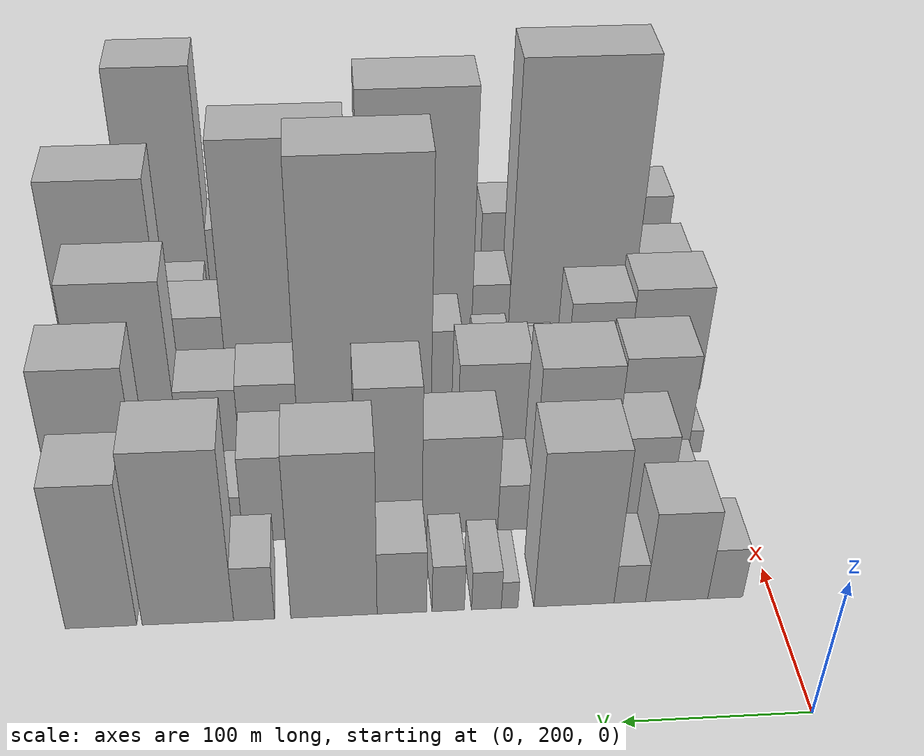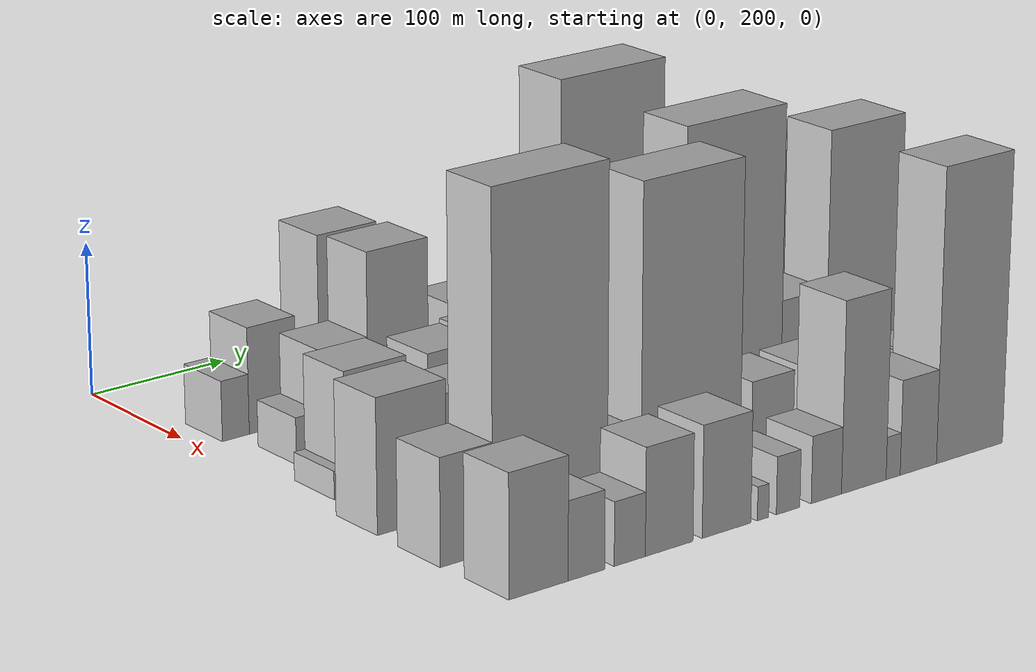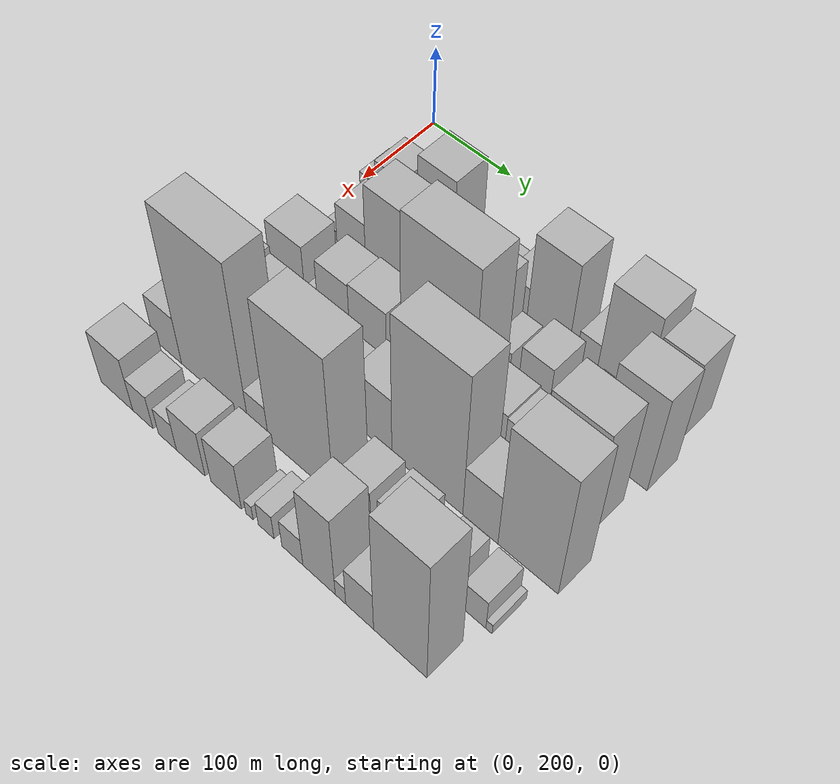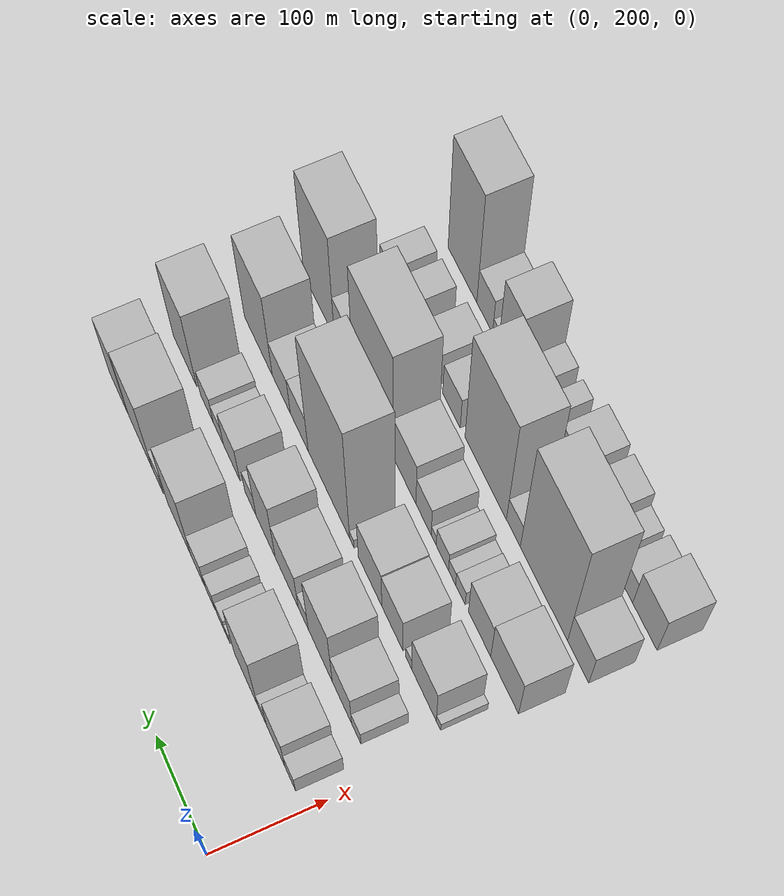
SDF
<sdf version="1.6">
 <world name="default">
  <model name="building_33">
   <static>1</static>
   <pose>100.0000 226.5743 0 0.000000 0.000000 0.000000</pose>
   <link name="link">
    <pose>0 0 19.50 0 0 0</pose>
    <collision name="collision"><geometry><box><size>40.0000 19.9543 39.0000</size></box></geometry></collision>
    <visual name="visual">
     <cast_shadows>0</cast_shadows>
     <geometry><box><size>40.0000 19.9543 39.0000</size></box></geometry>
     <material>
      <script>
       <uri>model://HANNAS_wall/materials/scripts</uri>
       <uri>model://HANNAS_wall/materials/textures</uri>
       <name>vrc/HANNAS_wall</name>
      </script>
     </material>
    </visual>
   </link>
  </model>
  <model name="building_34">
   <static>1</static>
   <pose>100.0000 254.2900 0 0.000000 0.000000 0.000000</pose>
   <link name="link">
    <pose>0 0 34.50 0 0 0</pose>
    <collision name="collision"><geometry><box><size>40.0000 35.4771 69.0000</size></box></geometry></collision>
    <visual name="visual">
     <cast_shadows>0</cast_shadows>
     <geometry><box><size>40.0000 35.4771 69.0000</size></box></geometry>
     <material>
      <script>
       <uri>model://HANNAS_wall/materials/scripts</uri>
       <uri>model://HANNAS_wall/materials/textures</uri>
       <name>vrc/HANNAS_wall</name>
      </script>
     </material>
    </visual>
   </link>
  </model>
  <model name="building_35">
   <static>1</static>
   <pose>100.0000 280.9951 0 0.000000 0.000000 0.000000</pose>
   <link name="link">
    <pose>0 0 15.00 0 0 0</pose>
    <collision name="collision"><geometry><box><size>40.0000 17.9330 30.0000</size></box></geometry></collision>
    <visual name="visual">
     <cast_shadows>0</cast_shadows>
     <geometry><box><size>40.0000 17.9330 30.0000</size></box></geometry>
     <material>
      <script>
       <uri>model://HANNAS_wall/materials/scripts</uri>
       <uri>model://HANNAS_wall/materials/textures</uri>
       <name>vrc/HANNAS_wall</name>
      </script>
     </material>
    </visual>
   </link>
  </model>
  <model name="building_36">
   <static>1</static>
   <pose>100.0000 312.5778 0 0.000000 0.000000 0.000000</pose>
   <link name="link">
    <pose>0 0 58.50 0 0 0</pose>
    <collision name="collision"><geometry><box><size>40.0000 45.2324 117.0000</size></box></geometry></collision>
    <visual name="visual">
     <cast_shadows>0</cast_shadows>
     <geometry><box><size>40.0000 45.2324 117.0000</size></box></geometry>
     <material>
      <script>
       <uri>model://HANNAS_wall/materials/scripts</uri>
       <uri>model://HANNAS_wall/materials/textures</uri>
       <name>vrc/HANNAS_wall</name>
      </script>
     </material>
    </visual>
   </link>
  </model>
  <model name="building_37">
   <static>1</static>
   <pose>100.0000 348.9004 0 0.000000 0.000000 0.000000</pose>
   <link name="link">
    <pose>0 0 10.50 0 0 0</pose>
    <collision name="collision"><geometry><box><size>40.0000 9.4128 21.0000</size></box></geometry></collision>
    <visual name="visual">
     <cast_shadows>0</cast_shadows>
     <geometry><box><size>40.0000 9.4128 21.0000</size></box></geometry>
     <material>
      <script>
       <uri>model://HANNAS_wall/materials/scripts</uri>
       <uri>model://HANNAS_wall/materials/textures</uri>
       <name>vrc/HANNAS_wall</name>
      </script>
     </material>
    </visual>
   </link>
  </model>
  <model name="building_38">
   <static>1</static>
   <pose>100.0000 361.9640 0 0.000000 0.000000 0.000000</pose>
   <link name="link">
    <pose>0 0 15.00 0 0 0</pose>
    <collision name="collision"><geometry><box><size>40.0000 16.7144 30.0000</size></box></geometry></collision>
    <visual name="visual">
     <cast_shadows>0</cast_shadows>
     <geometry><box><size>40.0000 16.7144 30.0000</size></box></geometry>
     <material>
      <script>
       <uri>model://HANNAS_wall/materials/scripts</uri>
       <uri>model://HANNAS_wall/materials/textures</uri>
       <name>vrc/HANNAS_wall</name>
      </script>
     </material>
    </visual>
   </link>
  </model>
  <model name="building_39">
   <static>1</static>
   <pose>100.0000 383.4142 0 0.000000 0.000000 0.000000</pose>
   <link name="link">
    <pose>0 0 18.00 0 0 0</pose>
    <collision name="collision"><geometry><box><size>40.0000 18.1861 36.0000</size></box></geometry></collision>
    <visual name="visual">
     <cast_shadows>0</cast_shadows>
     <geometry><box><size>40.0000 18.1861 36.0000</size></box></geometry>
     <material>
      <script>
       <uri>model://HANNAS_wall/materials/scripts</uri>
       <uri>model://HANNAS_wall/materials/textures</uri>
       <name>vrc/HANNAS_wall</name>
      </script>
     </material>
    </visual>
   </link>
  </model>
  <model name="building_40">
   <static>1</static>
   <pose>100.0000 409.3576 0 0.000000 0.000000 0.000000</pose>
   <link name="link">
    <pose>0 0 24.00 0 0 0</pose>
    <collision name="collision"><geometry><box><size>40.0000 27.7007 48.0000</size></box></geometry></collision>
    <visual name="visual">
     <cast_shadows>0</cast_shadows>
     <geometry><box><size>40.0000 27.7007 48.0000</size></box></geometry>
     <material>
      <script>
       <uri>model://HANNAS_wall/materials/scripts</uri>
       <uri>model://HANNAS_wall/materials/textures</uri>
       <name>vrc/HANNAS_wall</name>
      </script>
     </material>
    </visual>
   </link>
  </model>
  <model name="building_41">
   <static>1</static>
   <pose>100.0000 447.2292 0 0.000000 0.000000 0.000000</pose>
   <link name="link">
    <pose>0 0 61.50 0 0 0</pose>
    <collision name="collision"><geometry><box><size>40.0000 48.0426 123.0000</size></box></geometry></collision>
    <visual name="visual">
     <cast_shadows>0</cast_shadows>
     <geometry><box><size>40.0000 48.0426 123.0000</size></box></geometry>
     <material>
      <script>
       <uri>model://HANNAS_wall/materials/scripts</uri>
       <uri>model://HANNAS_wall/materials/textures</uri>
       <name>vrc/HANNAS_wall</name>
      </script>
     </material>
    </visual>
   </link>
  </model>
  <model name="building_42">
   <static>1</static>
   <pose>100.0000 491.5658 0 0.000000 0.000000 0.000000</pose>
   <link name="link">
    <pose>0 0 21.00 0 0 0</pose>
    <collision name="collision"><geometry><box><size>40.0000 22.6305 42.0000</size></box></geometry></collision>
    <visual name="visual">
     <cast_shadows>0</cast_shadows>
     <geometry><box><size>40.0000 22.6305 42.0000</size></box></geometry>
     <material>
      <script>
       <uri>model://HANNAS_wall/materials/scripts</uri>
       <uri>model://HANNAS_wall/materials/textures</uri>
       <name>vrc/HANNAS_wall</name>
      </script>
     </material>
    </visual>
   </link>
  </model>
  <model name="building_43">
   <static>1</static>
   <pose>100.0000 528.0806 0 0.000000 0.000000 0.000000</pose>
   <link name="link">
    <pose>0 0 64.50 0 0 0</pose>
    <collision name="collision"><geometry><box><size>40.0000 50.3991 129.0000</size></box></geometry></collision>
    <visual name="visual">
     <cast_shadows>0</cast_shadows>
     <geometry><box><size>40.0000 50.3991 129.0000</size></box></geometry>
     <material>
      <script>
       <uri>model://HANNAS_wall/materials/scripts</uri>
       <uri>model://HANNAS_wall/materials/textures</uri>
       <name>vrc/HANNAS_wall</name>
      </script>
     </material>
    </visual>
   </link>
  </model>
  <model name="building_44">
   <static>1</static>
   <pose>100.0000 575.9045 0 0.000000 0.000000 0.000000</pose>
   <link name="link">
    <pose>0 0 54.00 0 0 0</pose>
    <collision name="collision"><geometry><box><size>40.0000 39.2487 108.0000</size></box></geometry></collision>
    <visual name="visual">
     <cast_shadows>0</cast_shadows>
     <geometry><box><size>40.0000 39.2487 108.0000</size></box></geometry>
     <material>
      <script>
       <uri>model://HANNAS_wall/materials/scripts</uri>
       <uri>model://HANNAS_wall/materials/textures</uri>
       <name>vrc/HANNAS_wall</name>
      </script>
     </material>
    </visual>
   </link>
  </model>
  <model name="building_86">
   <static>1</static>
   <pose>160.0000 237.7883 0 0.000000 0.000000 0.000000</pose>
   <link name="link">
    <pose>0 0 15.00 0 0 0</pose>
    <collision name="collision"><geometry><box><size>40.0000 17.3962 30.0000</size></box></geometry></collision>
    <visual name="visual">
     <cast_shadows>0</cast_shadows>
     <geometry><box><size>40.0000 17.3962 30.0000</size></box></geometry>
     <material>
      <script>
       <uri>model://HANNAS_wall/materials/scripts</uri>
       <uri>model://HANNAS_wall/materials/textures</uri>
       <name>vrc/HANNAS_wall</name>
      </script>
     </material>
    </visual>
   </link>
  </model>
  <model name="building_87">
   <static>1</static>
   <pose>160.0000 264.7607 0 0.000000 0.000000 0.000000</pose>
   <link name="link">
    <pose>0 0 34.50 0 0 0</pose>
    <collision name="collision"><geometry><box><size>40.0000 36.5485 69.0000</size></box></geometry></collision>
    <visual name="visual">
     <cast_shadows>0</cast_shadows>
     <geometry><box><size>40.0000 36.5485 69.0000</size></box></geometry>
     <material>
      <script>
       <uri>model://HANNAS_wall/materials/scripts</uri>
       <uri>model://HANNAS_wall/materials/textures</uri>
       <name>vrc/HANNAS_wall</name>
      </script>
     </material>
    </visual>
   </link>
  </model>
  <model name="building_88">
   <static>1</static>
   <pose>160.0000 306.0437 0 0.000000 0.000000 0.000000</pose>
   <link name="link">
    <pose>0 0 61.50 0 0 0</pose>
    <collision name="collision"><geometry><box><size>40.0000 46.0176 123.0000</size></box></geometry></collision>
    <visual name="visual">
     <cast_shadows>0</cast_shadows>
     <geometry><box><size>40.0000 46.0176 123.0000</size></box></geometry>
     <material>
      <script>
       <uri>model://HANNAS_wall/materials/scripts</uri>
       <uri>model://HANNAS_wall/materials/textures</uri>
       <name>vrc/HANNAS_wall</name>
      </script>
     </material>
    </visual>
   </link>
  </model>
  <model name="building_89">
   <static>1</static>
   <pose>160.0000 338.9438 0 0.000000 0.000000 0.000000</pose>
   <link name="link">
    <pose>0 0 18.00 0 0 0</pose>
    <collision name="collision"><geometry><box><size>40.0000 19.7825 36.0000</size></box></geometry></collision>
    <visual name="visual">
     <cast_shadows>0</cast_shadows>
     <geometry><box><size>40.0000 19.7825 36.0000</size></box></geometry>
     <material>
      <script>
       <uri>model://HANNAS_wall/materials/scripts</uri>
       <uri>model://HANNAS_wall/materials/textures</uri>
       <name>vrc/HANNAS_wall</name>
      </script>
     </material>
    </visual>
   </link>
  </model>
  <model name="building_90">
   <static>1</static>
   <pose>160.0000 371.3312 0 0.000000 0.000000 0.000000</pose>
   <link name="link">
    <pose>0 0 37.50 0 0 0</pose>
    <collision name="collision"><geometry><box><size>40.0000 44.9923 75.0000</size></box></geometry></collision>
    <visual name="visual">
     <cast_shadows>0</cast_shadows>
     <geometry><box><size>40.0000 44.9923 75.0000</size></box></geometry>
     <material>
      <script>
       <uri>model://HANNAS_wall/materials/scripts</uri>
       <uri>model://HANNAS_wall/materials/textures</uri>
       <name>vrc/HANNAS_wall</name>
      </script>
     </material>
    </visual>
   </link>
  </model>
  <model name="building_91">
   <static>1</static>
   <pose>160.0000 413.0557 0 0.000000 0.000000 0.000000</pose>
   <link name="link">
    <pose>0 0 57.00 0 0 0</pose>
    <collision name="collision"><geometry><box><size>40.0000 38.4568 114.0000</size></box></geometry></collision>
    <visual name="visual">
     <cast_shadows>0</cast_shadows>
     <geometry><box><size>40.0000 38.4568 114.0000</size></box></geometry>
     <material>
      <script>
       <uri>model://HANNAS_wall/materials/scripts</uri>
       <uri>model://HANNAS_wall/materials/textures</uri>
       <name>vrc/HANNAS_wall</name>
      </script>
     </material>
    </visual>
   </link>
  </model>
  <model name="building_92">
   <static>1</static>
   <pose>160.0000 443.6695 0 0.000000 0.000000 0.000000</pose>
   <link name="link">
    <pose>0 0 22.50 0 0 0</pose>
    <collision name="collision"><geometry><box><size>40.0000 22.7707 45.0000</size></box></geometry></collision>
    <visual name="visual">
     <cast_shadows>0</cast_shadows>
     <geometry><box><size>40.0000 22.7707 45.0000</size></box></geometry>
     <material>
      <script>
       <uri>model://HANNAS_wall/materials/scripts</uri>
       <uri>model://HANNAS_wall/materials/textures</uri>
       <name>vrc/HANNAS_wall</name>
      </script>
     </material>
    </visual>
   </link>
  </model>
  <model name="building_93">
   <static>1</static>
   <pose>160.0000 482.1111 0 0.000000 0.000000 0.000000</pose>
   <link name="link">
    <pose>0 0 33.00 0 0 0</pose>
    <collision name="collision"><geometry><box><size>40.0000 34.1127 66.0000</size></box></geometry></collision>
    <visual name="visual">
     <cast_shadows>0</cast_shadows>
     <geometry><box><size>40.0000 34.1127 66.0000</size></box></geometry>
     <material>
      <script>
       <uri>model://HANNAS_wall/materials/scripts</uri>
       <uri>model://HANNAS_wall/materials/textures</uri>
       <name>vrc/HANNAS_wall</name>
      </script>
     </material>
    </visual>
   </link>
  </model>
  <model name="building_94">
   <static>1</static>
   <pose>160.0000 509.7058 0 0.000000 0.000000 0.000000</pose>
   <link name="link">
    <pose>0 0 18.00 0 0 0</pose>
    <collision name="collision"><geometry><box><size>40.0000 21.0765 36.0000</size></box></geometry></collision>
    <visual name="visual">
     <cast_shadows>0</cast_shadows>
     <geometry><box><size>40.0000 21.0765 36.0000</size></box></geometry>
     <material>
      <script>
       <uri>model://HANNAS_wall/materials/scripts</uri>
       <uri>model://HANNAS_wall/materials/textures</uri>
       <name>vrc/HANNAS_wall</name>
      </script>
     </material>
    </visual>
   </link>
  </model>
  <model name="building_95">
   <static>1</static>
   <pose>160.0000 533.6692 0 0.000000 0.000000 0.000000</pose>
   <link name="link">
    <pose>0 0 24.00 0 0 0</pose>
    <collision name="collision"><geometry><box><size>40.0000 26.8504 48.0000</size></box></geometry></collision>
    <visual name="visual">
     <cast_shadows>0</cast_shadows>
     <geometry><box><size>40.0000 26.8504 48.0000</size></box></geometry>
     <material>
      <script>
       <uri>model://HANNAS_wall/materials/scripts</uri>
       <uri>model://HANNAS_wall/materials/textures</uri>
       <name>vrc/HANNAS_wall</name>
      </script>
     </material>
    </visual>
   </link>
  </model>
  <model name="building_96">
   <static>1</static>
   <pose>160.0000 580.1037 0 0.000000 0.000000 0.000000</pose>
   <link name="link">
    <pose>0 0 67.50 0 0 0</pose>
    <collision name="collision"><geometry><box><size>40.0000 50.0185 135.0000</size></box></geometry></collision>
    <visual name="visual">
     <cast_shadows>0</cast_shadows>
     <geometry><box><size>40.0000 50.0185 135.0000</size></box></geometry>
     <material>
      <script>
       <uri>model://HANNAS_wall/materials/scripts</uri>
       <uri>model://HANNAS_wall/materials/textures</uri>
       <name>vrc/HANNAS_wall</name>
      </script>
     </material>
    </visual>
   </link>
  </model>
  <model name="building_143">
   <static>1</static>
   <pose>220.0000 217.3209 0 0.000000 0.000000 0.000000</pose>
   <link name="link">
    <pose>0 0 9.00 0 0 0</pose>
    <collision name="collision"><geometry><box><size>40.0000 7.9810 18.0000</size></box></geometry></collision>
    <visual name="visual">
     <cast_shadows>0</cast_shadows>
     <geometry><box><size>40.0000 7.9810 18.0000</size></box></geometry>
     <material>
      <script>
       <uri>model://HANNAS_wall/materials/scripts</uri>
       <uri>model://HANNAS_wall/materials/textures</uri>
       <name>vrc/HANNAS_wall</name>
      </script>
     </material>
    </visual>
   </link>
  </model>
  <model name="building_144">
   <static>1</static>
   <pose>220.0000 244.0377 0 0.000000 0.000000 0.000000</pose>
   <link name="link">
    <pose>0 0 39.00 0 0 0</pose>
    <collision name="collision"><geometry><box><size>40.0000 45.4525 78.0000</size></box></geometry></collision>
    <visual name="visual">
     <cast_shadows>0</cast_shadows>
     <geometry><box><size>40.0000 45.4525 78.0000</size></box></geometry>
     <material>
      <script>
       <uri>model://HANNAS_wall/materials/scripts</uri>
       <uri>model://HANNAS_wall/materials/textures</uri>
       <name>vrc/HANNAS_wall</name>
      </script>
     </material>
    </visual>
   </link>
  </model>
  <model name="building_145">
   <static>1</static>
   <pose>220.0000 272.2657 0 0.000000 0.000000 0.000000</pose>
   <link name="link">
    <pose>0 0 12.00 0 0 0</pose>
    <collision name="collision"><geometry><box><size>40.0000 11.0036 24.0000</size></box></geometry></collision>
    <visual name="visual">
     <cast_shadows>0</cast_shadows>
     <geometry><box><size>40.0000 11.0036 24.0000</size></box></geometry>
     <material>
      <script>
       <uri>model://HANNAS_wall/materials/scripts</uri>
       <uri>model://HANNAS_wall/materials/textures</uri>
       <name>vrc/HANNAS_wall</name>
      </script>
     </material>
    </visual>
   </link>
  </model>
  <model name="building_146">
   <static>1</static>
   <pose>220.0000 302.6118 0 0.000000 0.000000 0.000000</pose>
   <link name="link">
    <pose>0 0 37.50 0 0 0</pose>
    <collision name="collision"><geometry><box><size>40.0000 39.6886 75.0000</size></box></geometry></collision>
    <visual name="visual">
     <cast_shadows>0</cast_shadows>
     <geometry><box><size>40.0000 39.6886 75.0000</size></box></geometry>
     <material>
      <script>
       <uri>model://HANNAS_wall/materials/scripts</uri>
       <uri>model://HANNAS_wall/materials/textures</uri>
       <name>vrc/HANNAS_wall</name>
      </script>
     </material>
    </visual>
   </link>
  </model>
  <model name="building_147">
   <static>1</static>
   <pose>220.0000 344.9691 0 0.000000 0.000000 0.000000</pose>
   <link name="link">
    <pose>0 0 39.00 0 0 0</pose>
    <collision name="collision"><geometry><box><size>40.0000 45.0260 78.0000</size></box></geometry></collision>
    <visual name="visual">
     <cast_shadows>0</cast_shadows>
     <geometry><box><size>40.0000 45.0260 78.0000</size></box></geometry>
     <material>
      <script>
       <uri>model://HANNAS_wall/materials/scripts</uri>
       <uri>model://HANNAS_wall/materials/textures</uri>
       <name>vrc/HANNAS_wall</name>
      </script>
     </material>
    </visual>
   </link>
  </model>
  <model name="building_148">
   <static>1</static>
   <pose>220.0000 379.9000 0 0.000000 0.000000 0.000000</pose>
   <link name="link">
    <pose>0 0 9.00 0 0 0</pose>
    <collision name="collision"><geometry><box><size>40.0000 8.8358 18.0000</size></box></geometry></collision>
    <visual name="visual">
     <cast_shadows>0</cast_shadows>
     <geometry><box><size>40.0000 8.8358 18.0000</size></box></geometry>
     <material>
      <script>
       <uri>model://HANNAS_wall/materials/scripts</uri>
       <uri>model://HANNAS_wall/materials/textures</uri>
       <name>vrc/HANNAS_wall</name>
      </script>
     </material>
    </visual>
   </link>
  </model>
  <model name="building_149">
   <static>1</static>
   <pose>220.0000 424.9919 0 0.000000 0.000000 0.000000</pose>
   <link name="link">
    <pose>0 0 112.50 0 0 0</pose>
    <collision name="collision"><geometry><box><size>40.0000 81.3480 225.0000</size></box></geometry></collision>
    <visual name="visual">
     <cast_shadows>0</cast_shadows>
     <geometry><box><size>40.0000 81.3480 225.0000</size></box></geometry>
     <material>
      <script>
       <uri>model://HANNAS_wall/materials/scripts</uri>
       <uri>model://HANNAS_wall/materials/textures</uri>
       <name>vrc/HANNAS_wall</name>
      </script>
     </material>
    </visual>
   </link>
  </model>
  <model name="building_150">
   <static>1</static>
   <pose>220.0000 483.7124 0 0.000000 0.000000 0.000000</pose>
   <link name="link">
    <pose>0 0 34.50 0 0 0</pose>
    <collision name="collision"><geometry><box><size>40.0000 36.0931 69.0000</size></box></geometry></collision>
    <visual name="visual">
     <cast_shadows>0</cast_shadows>
     <geometry><box><size>40.0000 36.0931 69.0000</size></box></geometry>
     <material>
      <script>
       <uri>model://HANNAS_wall/materials/scripts</uri>
       <uri>model://HANNAS_wall/materials/textures</uri>
       <name>vrc/HANNAS_wall</name>
      </script>
     </material>
    </visual>
   </link>
  </model>
  <model name="building_151">
   <static>1</static>
   <pose>220.0000 520.1125 0 0.000000 0.000000 0.000000</pose>
   <link name="link">
    <pose>0 0 33.00 0 0 0</pose>
    <collision name="collision"><geometry><box><size>40.0000 36.7072 66.0000</size></box></geometry></collision>
    <visual name="visual">
     <cast_shadows>0</cast_shadows>
     <geometry><box><size>40.0000 36.7072 66.0000</size></box></geometry>
     <material>
      <script>
       <uri>model://HANNAS_wall/materials/scripts</uri>
       <uri>model://HANNAS_wall/materials/textures</uri>
       <name>vrc/HANNAS_wall</name>
      </script>
     </material>
    </visual>
   </link>
  </model>
  <model name="building_152">
   <static>1</static>
   <pose>220.0000 567.4619 0 0.000000 0.000000 0.000000</pose>
   <link name="link">
    <pose>0 0 73.50 0 0 0</pose>
    <collision name="collision"><geometry><box><size>40.0000 57.9916 147.0000</size></box></geometry></collision>
    <visual name="visual">
     <cast_shadows>0</cast_shadows>
     <geometry><box><size>40.0000 57.9916 147.0000</size></box></geometry>
     <material>
      <script>
       <uri>model://HANNAS_wall/materials/scripts</uri>
       <uri>model://HANNAS_wall/materials/textures</uri>
       <name>vrc/HANNAS_wall</name>
      </script>
     </material>
    </visual>
   </link>
  </model>
  <model name="building_193">
   <static>1</static>
   <pose>280.0000 225.0133 0 0.000000 0.000000 0.000000</pose>
   <link name="link">
    <pose>0 0 42.00 0 0 0</pose>
    <collision name="collision"><geometry><box><size>40.0000 49.9312 84.0000</size></box></geometry></collision>
    <visual name="visual">
     <cast_shadows>0</cast_shadows>
     <geometry><box><size>40.0000 49.9312 84.0000</size></box></geometry>
     <material>
      <script>
       <uri>model://HANNAS_wall/materials/scripts</uri>
       <uri>model://HANNAS_wall/materials/textures</uri>
       <name>vrc/HANNAS_wall</name>
      </script>
     </material>
    </visual>
   </link>
  </model>
  <model name="building_194">
   <static>1</static>
   <pose>280.0000 270.2196 0 0.000000 0.000000 0.000000</pose>
   <link name="link">
    <pose>0 0 37.50 0 0 0</pose>
    <collision name="collision"><geometry><box><size>40.0000 40.4814 75.0000</size></box></geometry></collision>
    <visual name="visual">
     <cast_shadows>0</cast_shadows>
     <geometry><box><size>40.0000 40.4814 75.0000</size></box></geometry>
     <material>
      <script>
       <uri>model://HANNAS_wall/materials/scripts</uri>
       <uri>model://HANNAS_wall/materials/textures</uri>
       <name>vrc/HANNAS_wall</name>
      </script>
     </material>
    </visual>
   </link>
  </model>
  <model name="building_195">
   <static>1</static>
   <pose>280.0000 305.2722 0 0.000000 0.000000 0.000000</pose>
   <link name="link">
    <pose>0 0 15.00 0 0 0</pose>
    <collision name="collision"><geometry><box><size>40.0000 17.6238 30.0000</size></box></geometry></collision>
    <visual name="visual">
     <cast_shadows>0</cast_shadows>
     <geometry><box><size>40.0000 17.6238 30.0000</size></box></geometry>
     <material>
      <script>
       <uri>model://HANNAS_wall/materials/scripts</uri>
       <uri>model://HANNAS_wall/materials/textures</uri>
       <name>vrc/HANNAS_wall</name>
      </script>
     </material>
    </visual>
   </link>
  </model>
  <model name="building_196">
   <static>1</static>
   <pose>280.0000 320.6730 0 0.000000 0.000000 0.000000</pose>
   <link name="link">
    <pose>0 0 13.50 0 0 0</pose>
    <collision name="collision"><geometry><box><size>40.0000 13.1778 27.0000</size></box></geometry></collision>
    <visual name="visual">
     <cast_shadows>0</cast_shadows>
     <geometry><box><size>40.0000 13.1778 27.0000</size></box></geometry>
     <material>
      <script>
       <uri>model://HANNAS_wall/materials/scripts</uri>
       <uri>model://HANNAS_wall/materials/textures</uri>
       <name>vrc/HANNAS_wall</name>
      </script>
     </material>
    </visual>
   </link>
  </model>
  <model name="building_197">
   <static>1</static>
   <pose>280.0000 338.7506 0 0.000000 0.000000 0.000000</pose>
   <link name="link">
    <pose>0 0 19.50 0 0 0</pose>
    <collision name="collision"><geometry><box><size>40.0000 22.9774 39.0000</size></box></geometry></collision>
    <visual name="visual">
     <cast_shadows>0</cast_shadows>
     <geometry><box><size>40.0000 22.9774 39.0000</size></box></geometry>
     <material>
      <script>
       <uri>model://HANNAS_wall/materials/scripts</uri>
       <uri>model://HANNAS_wall/materials/textures</uri>
       <name>vrc/HANNAS_wall</name>
      </script>
     </material>
    </visual>
   </link>
  </model>
  <model name="building_198">
   <static>1</static>
   <pose>280.0000 354.9611 0 0.000000 0.000000 0.000000</pose>
   <link name="link">
    <pose>0 0 10.50 0 0 0</pose>
    <collision name="collision"><geometry><box><size>40.0000 9.4434 21.0000</size></box></geometry></collision>
    <visual name="visual">
     <cast_shadows>0</cast_shadows>
     <geometry><box><size>40.0000 9.4434 21.0000</size></box></geometry>
     <material>
      <script>
       <uri>model://HANNAS_wall/materials/scripts</uri>
       <uri>model://HANNAS_wall/materials/textures</uri>
       <name>vrc/HANNAS_wall</name>
      </script>
     </material>
    </visual>
   </link>
  </model>
  <model name="building_199">
   <static>1</static>
   <pose>280.0000 374.0557 0 0.000000 0.000000 0.000000</pose>
   <link name="link">
    <pose>0 0 28.50 0 0 0</pose>
    <collision name="collision"><geometry><box><size>40.0000 28.7459 57.0000</size></box></geometry></collision>
    <visual name="visual">
     <cast_shadows>0</cast_shadows>
     <geometry><box><size>40.0000 28.7459 57.0000</size></box></geometry>
     <material>
      <script>
       <uri>model://HANNAS_wall/materials/scripts</uri>
       <uri>model://HANNAS_wall/materials/textures</uri>
       <name>vrc/HANNAS_wall</name>
      </script>
     </material>
    </visual>
   </link>
  </model>
  <model name="building_200">
   <static>1</static>
   <pose>280.0000 410.1168 0 0.000000 0.000000 0.000000</pose>
   <link name="link">
    <pose>0 0 42.00 0 0 0</pose>
    <collision name="collision"><geometry><box><size>40.0000 43.3763 84.0000</size></box></geometry></collision>
    <visual name="visual">
     <cast_shadows>0</cast_shadows>
     <geometry><box><size>40.0000 43.3763 84.0000</size></box></geometry>
     <material>
      <script>
       <uri>model://HANNAS_wall/materials/scripts</uri>
       <uri>model://HANNAS_wall/materials/textures</uri>
       <name>vrc/HANNAS_wall</name>
      </script>
     </material>
    </visual>
   </link>
  </model>
  <model name="building_201">
   <static>1</static>
   <pose>280.0000 471.5081 0 0.000000 0.000000 0.000000</pose>
   <link name="link">
    <pose>0 0 100.50 0 0 0</pose>
    <collision name="collision"><geometry><box><size>40.0000 79.4062 201.0000</size></box></geometry></collision>
    <visual name="visual">
     <cast_shadows>0</cast_shadows>
     <geometry><box><size>40.0000 79.4062 201.0000</size></box></geometry>
     <material>
      <script>
       <uri>model://HANNAS_wall/materials/scripts</uri>
       <uri>model://HANNAS_wall/materials/textures</uri>
       <name>vrc/HANNAS_wall</name>
      </script>
     </material>
    </visual>
   </link>
  </model>
  <model name="building_202">
   <static>1</static>
   <pose>280.0000 530.1038 0 0.000000 0.000000 0.000000</pose>
   <link name="link">
    <pose>0 0 37.50 0 0 0</pose>
    <collision name="collision"><geometry><box><size>40.0000 37.7852 75.0000</size></box></geometry></collision>
    <visual name="visual">
     <cast_shadows>0</cast_shadows>
     <geometry><box><size>40.0000 37.7852 75.0000</size></box></geometry>
     <material>
      <script>
       <uri>model://HANNAS_wall/materials/scripts</uri>
       <uri>model://HANNAS_wall/materials/textures</uri>
       <name>vrc/HANNAS_wall</name>
      </script>
     </material>
    </visual>
   </link>
  </model>
  <model name="building_203">
   <static>1</static>
   <pose>280.0000 580.2950 0 0.000000 0.000000 0.000000</pose>
   <link name="link">
    <pose>0 0 88.50 0 0 0</pose>
    <collision name="collision"><geometry><box><size>40.0000 62.5972 177.0000</size></box></geometry></collision>
    <visual name="visual">
     <cast_shadows>0</cast_shadows>
     <geometry><box><size>40.0000 62.5972 177.0000</size></box></geometry>
     <material>
      <script>
       <uri>model://HANNAS_wall/materials/scripts</uri>
       <uri>model://HANNAS_wall/materials/textures</uri>
       <name>vrc/HANNAS_wall</name>
      </script>
     </material>
    </visual>
   </link>
  </model>
  <model name="building_254">
   <static>1</static>
   <pose>340.0000 217.9409 0 0.000000 0.000000 0.000000</pose>
   <link name="link">
    <pose>0 0 33.00 0 0 0</pose>
    <collision name="collision"><geometry><box><size>40.0000 37.1772 66.0000</size></box></geometry></collision>
    <visual name="visual">
     <cast_shadows>0</cast_shadows>
     <geometry><box><size>40.0000 37.1772 66.0000</size></box></geometry>
     <material>
      <script>
       <uri>model://HANNAS_wall/materials/scripts</uri>
       <uri>model://HANNAS_wall/materials/textures</uri>
       <name>vrc/HANNAS_wall</name>
      </script>
     </material>
    </visual>
   </link>
  </model>
  <model name="building_255">
   <static>1</static>
   <pose>340.0000 278.9025 0 0.000000 0.000000 0.000000</pose>
   <link name="link">
    <pose>0 0 108.00 0 0 0</pose>
    <collision name="collision"><geometry><box><size>40.0000 84.7460 216.0000</size></box></geometry></collision>
    <visual name="visual">
     <cast_shadows>0</cast_shadows>
     <geometry><box><size>40.0000 84.7460 216.0000</size></box></geometry>
     <material>
      <script>
       <uri>model://HANNAS_wall/materials/scripts</uri>
       <uri>model://HANNAS_wall/materials/textures</uri>
       <name>vrc/HANNAS_wall</name>
      </script>
     </material>
    </visual>
   </link>
  </model>
  <model name="building_256">
   <static>1</static>
   <pose>340.0000 333.9709 0 0.000000 0.000000 0.000000</pose>
   <link name="link">
    <pose>0 0 24.00 0 0 0</pose>
    <collision name="collision"><geometry><box><size>40.0000 25.3909 48.0000</size></box></geometry></collision>
    <visual name="visual">
     <cast_shadows>0</cast_shadows>
     <geometry><box><size>40.0000 25.3909 48.0000</size></box></geometry>
     <material>
      <script>
       <uri>model://HANNAS_wall/materials/scripts</uri>
       <uri>model://HANNAS_wall/materials/textures</uri>
       <name>vrc/HANNAS_wall</name>
      </script>
     </material>
    </visual>
   </link>
  </model>
  <model name="building_257">
   <static>1</static>
   <pose>340.0000 385.3400 0 0.000000 0.000000 0.000000</pose>
   <link name="link">
    <pose>0 0 99.00 0 0 0</pose>
    <collision name="collision"><geometry><box><size>40.0000 77.3474 198.0000</size></box></geometry></collision>
    <visual name="visual">
     <cast_shadows>0</cast_shadows>
     <geometry><box><size>40.0000 77.3474 198.0000</size></box></geometry>
     <material>
      <script>
       <uri>model://HANNAS_wall/materials/scripts</uri>
       <uri>model://HANNAS_wall/materials/textures</uri>
       <name>vrc/HANNAS_wall</name>
      </script>
     </material>
    </visual>
   </link>
  </model>
  <model name="building_258">
   <static>1</static>
   <pose>340.0000 449.7988 0 0.000000 0.000000 0.000000</pose>
   <link name="link">
    <pose>0 0 28.50 0 0 0</pose>
    <collision name="collision"><geometry><box><size>40.0000 33.5702 57.0000</size></box></geometry></collision>
    <visual name="visual">
     <cast_shadows>0</cast_shadows>
     <geometry><box><size>40.0000 33.5702 57.0000</size></box></geometry>
     <material>
      <script>
       <uri>model://HANNAS_wall/materials/scripts</uri>
       <uri>model://HANNAS_wall/materials/textures</uri>
       <name>vrc/HANNAS_wall</name>
      </script>
     </material>
    </visual>
   </link>
  </model>
  <model name="building_259">
   <static>1</static>
   <pose>340.0000 491.5756 0 0.000000 0.000000 0.000000</pose>
   <link name="link">
    <pose>0 0 28.50 0 0 0</pose>
    <collision name="collision"><geometry><box><size>40.0000 33.9834 57.0000</size></box></geometry></collision>
    <visual name="visual">
     <cast_shadows>0</cast_shadows>
     <geometry><box><size>40.0000 33.9834 57.0000</size></box></geometry>
     <material>
      <script>
       <uri>model://HANNAS_wall/materials/scripts</uri>
       <uri>model://HANNAS_wall/materials/textures</uri>
       <name>vrc/HANNAS_wall</name>
      </script>
     </material>
    </visual>
   </link>
  </model>
  <model name="building_260">
   <static>1</static>
   <pose>340.0000 513.4118 0 0.000000 0.000000 0.000000</pose>
   <link name="link">
    <pose>0 0 10.50 0 0 0</pose>
    <collision name="collision"><geometry><box><size>40.0000 9.6889 21.0000</size></box></geometry></collision>
    <visual name="visual">
     <cast_shadows>0</cast_shadows>
     <geometry><box><size>40.0000 9.6889 21.0000</size></box></geometry>
     <material>
      <script>
       <uri>model://HANNAS_wall/materials/scripts</uri>
       <uri>model://HANNAS_wall/materials/textures</uri>
       <name>vrc/HANNAS_wall</name>
      </script>
     </material>
    </visual>
   </link>
  </model>
  <model name="building_261">
   <static>1</static>
   <pose>340.0000 542.0038 0 0.000000 0.000000 0.000000</pose>
   <link name="link">
    <pose>0 0 24.00 0 0 0</pose>
    <collision name="collision"><geometry><box><size>40.0000 27.4951 48.0000</size></box></geometry></collision>
    <visual name="visual">
     <cast_shadows>0</cast_shadows>
     <geometry><box><size>40.0000 27.4951 48.0000</size></box></geometry>
     <material>
      <script>
       <uri>model://HANNAS_wall/materials/scripts</uri>
       <uri>model://HANNAS_wall/materials/textures</uri>
       <name>vrc/HANNAS_wall</name>
      </script>
     </material>
    </visual>
   </link>
  </model>
  <model name="building_262">
   <static>1</static>
   <pose>340.0000 577.3131 0 0.000000 0.000000 0.000000</pose>
   <link name="link">
    <pose>0 0 22.50 0 0 0</pose>
    <collision name="collision"><geometry><box><size>40.0000 25.1236 45.0000</size></box></geometry></collision>
    <visual name="visual">
     <cast_shadows>0</cast_shadows>
     <geometry><box><size>40.0000 25.1236 45.0000</size></box></geometry>
     <material>
      <script>
       <uri>model://HANNAS_wall/materials/scripts</uri>
       <uri>model://HANNAS_wall/materials/textures</uri>
       <name>vrc/HANNAS_wall</name>
      </script>
     </material>
    </visual>
   </link>
  </model>
  <model name="building_263">
   <static>1</static>
   <pose>340.0000 593.0935 0 0.000000 0.000000 0.000000</pose>
   <link name="link">
    <pose>0 0 7.50 0 0 0</pose>
    <collision name="collision"><geometry><box><size>40.0000 6.4374 15.0000</size></box></geometry></collision>
    <visual name="visual">
     <cast_shadows>0</cast_shadows>
     <geometry><box><size>40.0000 6.4374 15.0000</size></box></geometry>
     <material>
      <script>
       <uri>model://HANNAS_wall/materials/scripts</uri>
       <uri>model://HANNAS_wall/materials/textures</uri>
       <name>vrc/HANNAS_wall</name>
      </script>
     </material>
    </visual>
   </link>
  </model>
  <model name="building_308">
   <static>1</static>
   <pose>400.0000 221.7041 0 0.000000 0.000000 0.000000</pose>
   <link name="link">
    <pose>0 0 37.50 0 0 0</pose>
    <collision name="collision"><geometry><box><size>40.0000 42.1356 75.0000</size></box></geometry></collision>
    <visual name="visual">
     <cast_shadows>0</cast_shadows>
     <geometry><box><size>40.0000 42.1356 75.0000</size></box></geometry>
     <material>
      <script>
       <uri>model://HANNAS_wall/materials/scripts</uri>
       <uri>model://HANNAS_wall/materials/textures</uri>
       <name>vrc/HANNAS_wall</name>
      </script>
     </material>
    </visual>
   </link>
  </model>
  <model name="building_309">
   <static>1</static>
   <pose>400.0000 255.9290 0 0.000000 0.000000 0.000000</pose>
   <link name="link">
    <pose>0 0 24.00 0 0 0</pose>
    <collision name="collision"><geometry><box><size>40.0000 26.3141 48.0000</size></box></geometry></collision>
    <visual name="visual">
     <cast_shadows>0</cast_shadows>
     <geometry><box><size>40.0000 26.3141 48.0000</size></box></geometry>
     <material>
      <script>
       <uri>model://HANNAS_wall/materials/scripts</uri>
       <uri>model://HANNAS_wall/materials/textures</uri>
       <name>vrc/HANNAS_wall</name>
      </script>
     </material>
    </visual>
   </link>
  </model>
  <model name="building_310">
   <static>1</static>
   <pose>400.0000 287.5529 0 0.000000 0.000000 0.000000</pose>
   <link name="link">
    <pose>0 0 19.50 0 0 0</pose>
    <collision name="collision"><geometry><box><size>40.0000 22.9336 39.0000</size></box></geometry></collision>
    <visual name="visual">
     <cast_shadows>0</cast_shadows>
     <geometry><box><size>40.0000 22.9336 39.0000</size></box></geometry>
     <material>
      <script>
       <uri>model://HANNAS_wall/materials/scripts</uri>
       <uri>model://HANNAS_wall/materials/textures</uri>
       <name>vrc/HANNAS_wall</name>
      </script>
     </material>
    </visual>
   </link>
  </model>
  <model name="building_311">
   <static>1</static>
   <pose>400.0000 316.8373 0 0.000000 0.000000 0.000000</pose>
   <link name="link">
    <pose>0 0 33.00 0 0 0</pose>
    <collision name="collision"><geometry><box><size>40.0000 35.6354 66.0000</size></box></geometry></collision>
    <visual name="visual">
     <cast_shadows>0</cast_shadows>
     <geometry><box><size>40.0000 35.6354 66.0000</size></box></geometry>
     <material>
      <script>
       <uri>model://HANNAS_wall/materials/scripts</uri>
       <uri>model://HANNAS_wall/materials/textures</uri>
       <name>vrc/HANNAS_wall</name>
      </script>
     </material>
    </visual>
   </link>
  </model>
  <model name="building_312">
   <static>1</static>
   <pose>400.0000 360.2936 0 0.000000 0.000000 0.000000</pose>
   <link name="link">
    <pose>0 0 34.50 0 0 0</pose>
    <collision name="collision"><geometry><box><size>40.0000 37.2771 69.0000</size></box></geometry></collision>
    <visual name="visual">
     <cast_shadows>0</cast_shadows>
     <geometry><box><size>40.0000 37.2771 69.0000</size></box></geometry>
     <material>
      <script>
       <uri>model://HANNAS_wall/materials/scripts</uri>
       <uri>model://HANNAS_wall/materials/textures</uri>
       <name>vrc/HANNAS_wall</name>
      </script>
     </material>
    </visual>
   </link>
  </model>
  <model name="building_313">
   <static>1</static>
   <pose>400.0000 388.3353 0 0.000000 0.000000 0.000000</pose>
   <link name="link">
    <pose>0 0 10.50 0 0 0</pose>
    <collision name="collision"><geometry><box><size>40.0000 8.8062 21.0000</size></box></geometry></collision>
    <visual name="visual">
     <cast_shadows>0</cast_shadows>
     <geometry><box><size>40.0000 8.8062 21.0000</size></box></geometry>
     <material>
      <script>
       <uri>model://HANNAS_wall/materials/scripts</uri>
       <uri>model://HANNAS_wall/materials/textures</uri>
       <name>vrc/HANNAS_wall</name>
      </script>
     </material>
    </visual>
   </link>
  </model>
  <model name="building_314">
   <static>1</static>
   <pose>400.0000 407.9941 0 0.000000 0.000000 0.000000</pose>
   <link name="link">
    <pose>0 0 18.00 0 0 0</pose>
    <collision name="collision"><geometry><box><size>40.0000 18.5114 36.0000</size></box></geometry></collision>
    <visual name="visual">
     <cast_shadows>0</cast_shadows>
     <geometry><box><size>40.0000 18.5114 36.0000</size></box></geometry>
     <material>
      <script>
       <uri>model://HANNAS_wall/materials/scripts</uri>
       <uri>model://HANNAS_wall/materials/textures</uri>
       <name>vrc/HANNAS_wall</name>
      </script>
     </material>
    </visual>
   </link>
  </model>
  <model name="building_315">
   <static>1</static>
   <pose>400.0000 438.3180 0 0.000000 0.000000 0.000000</pose>
   <link name="link">
    <pose>0 0 21.00 0 0 0</pose>
    <collision name="collision"><geometry><box><size>40.0000 24.1363 42.0000</size></box></geometry></collision>
    <visual name="visual">
     <cast_shadows>0</cast_shadows>
     <geometry><box><size>40.0000 24.1363 42.0000</size></box></geometry>
     <material>
      <script>
       <uri>model://HANNAS_wall/materials/scripts</uri>
       <uri>model://HANNAS_wall/materials/textures</uri>
       <name>vrc/HANNAS_wall</name>
      </script>
     </material>
    </visual>
   </link>
  </model>
  <model name="building_316">
   <static>1</static>
   <pose>400.0000 468.4780 0 0.000000 0.000000 0.000000</pose>
   <link name="link">
    <pose>0 0 60.00 0 0 0</pose>
    <collision name="collision"><geometry><box><size>40.0000 36.1837 120.0000</size></box></geometry></collision>
    <visual name="visual">
     <cast_shadows>0</cast_shadows>
     <geometry><box><size>40.0000 36.1837 120.0000</size></box></geometry>
     <material>
      <script>
       <uri>model://HANNAS_wall/materials/scripts</uri>
       <uri>model://HANNAS_wall/materials/textures</uri>
       <name>vrc/HANNAS_wall</name>
      </script>
     </material>
    </visual>
   </link>
  </model>
  <model name="building_317">
   <static>1</static>
   <pose>400.0000 492.3508 0 0.000000 0.000000 0.000000</pose>
   <link name="link">
    <pose>0 0 13.50 0 0 0</pose>
    <collision name="collision"><geometry><box><size>40.0000 11.5620 27.0000</size></box></geometry></collision>
    <visual name="visual">
     <cast_shadows>0</cast_shadows>
     <geometry><box><size>40.0000 11.5620 27.0000</size></box></geometry>
     <material>
      <script>
       <uri>model://HANNAS_wall/materials/scripts</uri>
       <uri>model://HANNAS_wall/materials/textures</uri>
       <name>vrc/HANNAS_wall</name>
      </script>
     </material>
    </visual>
   </link>
  </model>
  <model name="building_318">
   <static>1</static>
   <pose>400.0000 513.2133 0 0.000000 0.000000 0.000000</pose>
   <link name="link">
    <pose>0 0 30.00 0 0 0</pose>
    <collision name="collision"><geometry><box><size>40.0000 30.1629 60.0000</size></box></geometry></collision>
    <visual name="visual">
     <cast_shadows>0</cast_shadows>
     <geometry><box><size>40.0000 30.1629 60.0000</size></box></geometry>
     <material>
      <script>
       <uri>model://HANNAS_wall/materials/scripts</uri>
       <uri>model://HANNAS_wall/materials/textures</uri>
       <name>vrc/HANNAS_wall</name>
      </script>
     </material>
    </visual>
   </link>
  </model>
  <model name="building_319">
   <static>1</static>
   <pose>400.0000 556.3000 0 0.000000 0.000000 0.000000</pose>
   <link name="link">
    <pose>0 0 93.00 0 0 0</pose>
    <collision name="collision"><geometry><box><size>40.0000 56.0105 186.0000</size></box></geometry></collision>
    <visual name="visual">
     <cast_shadows>0</cast_shadows>
     <geometry><box><size>40.0000 56.0105 186.0000</size></box></geometry>
     <material>
      <script>
       <uri>model://HANNAS_wall/materials/scripts</uri>
       <uri>model://HANNAS_wall/materials/textures</uri>
       <name>vrc/HANNAS_wall</name>
      </script>
     </material>
    </visual>
   </link>
  </model>
 </world>
</sdf>
